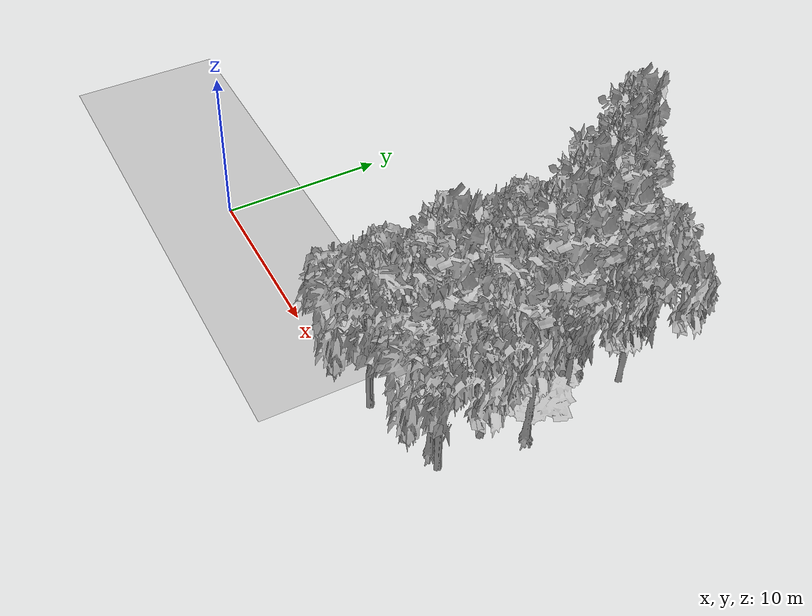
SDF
<sdf version="1.7">
 <world name="default">
  <model name="ground_plane">
   <static>1</static>
   <link name="link">
    <collision name="collision">
     <pose>-50 0 0 0 -0 0</pose>
     <geometry><plane><normal>0 0 1</normal><size>100 100</size></plane></geometry>
     <surface><contact><ode><min_depth>0.01</min_depth><max_vel>0</max_vel></ode></contact></surface>
    </collision>
    <visual name="grass">
     <cast_shadows>0</cast_shadows>
     <geometry>
      <mesh>
       <scale>0.5814285714285714 0.18142857142857144 0.1</scale>
       <uri>file://grass_plane/meshes/grass_plane.dae</uri>
      </mesh>
     </geometry>
    </visual>
   </link>
  </model>
  <model name="Tree 21">
   <static>1</static>
   <pose>21.367335471457935 2.1519935512606843 0 1.57079 -0 0</pose>
   <link name="link">
    <collision name="collision">
     <geometry><mesh><scale>3.5 5 3.5</scale><uri>model://tree_9/meshes/tree_9.obj</uri></mesh></geometry>
    </collision>
    <visual name="visual">
     <geometry><mesh><scale>3.5 5 3.5</scale><uri>model://tree_9/meshes/tree_9.obj</uri></mesh></geometry>
    </visual>
   </link>
  </model>
  <model name="Tree 24">
   <static>1</static>
   <pose>21.791082474754603 13.55375864014023 0 1.57079 -0 0</pose>
   <link name="link">
    <collision name="collision">
     <geometry><mesh><scale>3.5 5 3.5</scale><uri>model://tree_2/meshes/tree_2.obj</uri></mesh></geometry>
    </collision>
    <visual name="visual">
     <geometry><mesh><scale>3.5 5 3.5</scale><uri>model://tree_2/meshes/tree_2.obj</uri></mesh></geometry>
    </visual>
   </link>
  </model>
  <model name="Tree 45">
   <static>1</static>
   <pose>19.78673525410484 12.360488817873605 0 1.57079 -0 0</pose>
   <link name="link">
    <collision name="collision">
     <geometry><mesh><scale>3.5 5 3.5</scale><uri>model://tree_9/meshes/tree_9.obj</uri></mesh></geometry>
    </collision>
    <visual name="visual">
     <geometry><mesh><scale>3.5 5 3.5</scale><uri>model://tree_9/meshes/tree_9.obj</uri></mesh></geometry>
    </visual>
   </link>
  </model>
  <model name="Tree 61">
   <static>1</static>
   <pose>17.26923406906792 10.206086958640569 0 1.57079 -0 0</pose>
   <link name="link">
    <collision name="collision">
     <geometry><mesh><scale>4 2.5 4</scale><uri>model://tree_1/meshes/tree_1.obj</uri></mesh></geometry>
    </collision>
    <visual name="visual">
     <geometry><mesh><scale>4 2.5 4</scale><uri>model://tree_1/meshes/tree_1.obj</uri></mesh></geometry>
    </visual>
   </link>
  </model>
  <model name="Tree 104">
   <static>1</static>
   <pose>19.315531246114944 10.864921184924029 0 1.57079 -0 0</pose>
   <link name="link">
    <collision name="collision">
     <geometry><mesh><scale>3.5 5 3.5</scale><uri>model://tree_2/meshes/tree_2.obj</uri></mesh></geometry>
    </collision>
    <visual name="visual">
     <geometry><mesh><scale>3.5 5 3.5</scale><uri>model://tree_2/meshes/tree_2.obj</uri></mesh></geometry>
    </visual>
   </link>
  </model>
  <model name="Tree 107">
   <static>1</static>
   <pose>20.34890130940515 11.949042028274288 0 1.57079 -0 0</pose>
   <link name="link">
    <collision name="collision">
     <geometry><mesh><scale>3.5 5 3.5</scale><uri>model://tree_9/meshes/tree_9.obj</uri></mesh></geometry>
    </collision>
    <visual name="visual">
     <geometry><mesh><scale>3.5 5 3.5</scale><uri>model://tree_9/meshes/tree_9.obj</uri></mesh></geometry>
    </visual>
   </link>
  </model>
  <model name="Tree 151">
   <static>1</static>
   <pose>21.59081989070623 4.947065967523464 0 1.57079 -0 0</pose>
   <link name="link">
    <collision name="collision">
     <geometry><mesh><scale>3.5 5 3.5</scale><uri>model://tree_2/meshes/tree_2.obj</uri></mesh></geometry>
    </collision>
    <visual name="visual">
     <geometry><mesh><scale>3.5 5 3.5</scale><uri>model://tree_2/meshes/tree_2.obj</uri></mesh></geometry>
    </visual>
   </link>
  </model>
  <model name="Tree 154">
   <static>1</static>
   <pose>17.85595041410879 12.108452537775136 0 1.57079 -0 0</pose>
   <link name="link">
    <collision name="collision">
     <geometry><mesh><scale>3.5 5 3.5</scale><uri>model://tree_2/meshes/tree_2.obj</uri></mesh></geometry>
    </collision>
    <visual name="visual">
     <geometry><mesh><scale>3.5 5 3.5</scale><uri>model://tree_2/meshes/tree_2.obj</uri></mesh></geometry>
    </visual>
   </link>
  </model>
  <model name="Tree 183">
   <static>1</static>
   <pose>21.203133754636255 10.395922435087932 0 1.57079 -0 0</pose>
   <link name="link">
    <collision name="collision">
     <geometry><mesh><scale>3.5 5 3.5</scale><uri>model://tree_2/meshes/tree_2.obj</uri></mesh></geometry>
    </collision>
    <visual name="visual">
     <geometry><mesh><scale>3.5 5 3.5</scale><uri>model://tree_2/meshes/tree_2.obj</uri></mesh></geometry>
    </visual>
   </link>
  </model>
  <model name="Tree 184">
   <static>1</static>
   <pose>18.128221362961085 14.20443538642537 0 1.57079 -0 0</pose>
   <link name="link">
    <collision name="collision">
     <geometry><mesh><scale>3.5 5 3.5</scale><uri>model://tree_9/meshes/tree_9.obj</uri></mesh></geometry>
    </collision>
    <visual name="visual">
     <geometry><mesh><scale>3.5 5 3.5</scale><uri>model://tree_9/meshes/tree_9.obj</uri></mesh></geometry>
    </visual>
   </link>
  </model>
  <model name="Tree 186">
   <static>1</static>
   <pose>20.27285421675458 7.913068570621977 0 1.57079 -0 0</pose>
   <link name="link">
    <collision name="collision">
     <geometry><mesh><scale>4 2.5 4</scale><uri>model://tree_1/meshes/tree_1.obj</uri></mesh></geometry>
    </collision>
    <visual name="visual">
     <geometry><mesh><scale>4 2.5 4</scale><uri>model://tree_1/meshes/tree_1.obj</uri></mesh></geometry>
    </visual>
   </link>
  </model>
  <model name="Tree 235">
   <static>1</static>
   <pose>22.754170959356074 7.072260937601882 0 1.57079 -0 0</pose>
   <link name="link">
    <collision name="collision">
     <geometry><mesh><scale>3.5 5 3.5</scale><uri>model://tree_9/meshes/tree_9.obj</uri></mesh></geometry>
    </collision>
    <visual name="visual">
     <geometry><mesh><scale>3.5 5 3.5</scale><uri>model://tree_9/meshes/tree_9.obj</uri></mesh></geometry>
    </visual>
   </link>
  </model>
  <model name="Tree 272">
   <static>1</static>
   <pose>21.361020384196735 10.345353155049605 0 1.57079 -0 0</pose>
   <link name="link">
    <collision name="collision">
     <geometry><mesh><scale>3.5 5 3.5</scale><uri>model://tree_2/meshes/tree_2.obj</uri></mesh></geometry>
    </collision>
    <visual name="visual">
     <geometry><mesh><scale>3.5 5 3.5</scale><uri>model://tree_2/meshes/tree_2.obj</uri></mesh></geometry>
    </visual>
   </link>
  </model>
  <model name="Tree 273">
   <static>1</static>
   <pose>21.27227395288793 9.99260406678098 0 1.57079 -0 0</pose>
   <link name="link">
    <collision name="collision">
     <geometry><mesh><scale>3.5 5 3.5</scale><uri>model://tree_2/meshes/tree_2.obj</uri></mesh></geometry>
    </collision>
    <visual name="visual">
     <geometry><mesh><scale>3.5 5 3.5</scale><uri>model://tree_2/meshes/tree_2.obj</uri></mesh></geometry>
    </visual>
   </link>
  </model>
  <model name="Tree 378">
   <static>1</static>
   <pose>17.480769987250042 3.4021114461255983 0 1.57079 -0 0</pose>
   <link name="link">
    <collision name="collision">
     <geometry><mesh><scale>3 2 3</scale><uri>model://tree_3/meshes/tree_3.obj</uri></mesh></geometry>
    </collision>
    <visual name="visual">
     <geometry><mesh><scale>3 2 3</scale><uri>model://tree_3/meshes/tree_3.obj</uri></mesh></geometry>
    </visual>
   </link>
  </model>
  <model name="Tree 423">
   <static>1</static>
   <pose>18.093336139817765 5.844083357259766 0 1.57079 -0 0</pose>
   <link name="link">
    <collision name="collision">
     <geometry><mesh><scale>3.5 5 3.5</scale><uri>model://tree_2/meshes/tree_2.obj</uri></mesh></geometry>
    </collision>
    <visual name="visual">
     <geometry><mesh><scale>3.5 5 3.5</scale><uri>model://tree_2/meshes/tree_2.obj</uri></mesh></geometry>
    </visual>
   </link>
  </model>
  <model name="Tree 437">
   <static>1</static>
   <pose>19.46533851722195 9.715644487676379 0 1.57079 -0 0</pose>
   <link name="link">
    <collision name="collision">
     <geometry><mesh><scale>3 2 3</scale><uri>model://tree_3/meshes/tree_3.obj</uri></mesh></geometry>
    </collision>
    <visual name="visual">
     <geometry><mesh><scale>3 2 3</scale><uri>model://tree_3/meshes/tree_3.obj</uri></mesh></geometry>
    </visual>
   </link>
  </model>
  <model name="Tree 443">
   <static>1</static>
   <pose>17.309995790582775 0.7900076674562229 0 1.57079 -0 0</pose>
   <link name="link">
    <collision name="collision">
     <geometry><mesh><scale>3.5 5 3.5</scale><uri>model://tree_2/meshes/tree_2.obj</uri></mesh></geometry>
    </collision>
    <visual name="visual">
     <geometry><mesh><scale>3.5 5 3.5</scale><uri>model://tree_2/meshes/tree_2.obj</uri></mesh></geometry>
    </visual>
   </link>
  </model>
  <model name="Tree 450">
   <static>1</static>
   <pose>21.26184371597367 9.288771762307253 0 1.57079 -0 0</pose>
   <link name="link">
    <collision name="collision">
     <geometry><mesh><scale>3.5 5 3.5</scale><uri>model://tree_9/meshes/tree_9.obj</uri></mesh></geometry>
    </collision>
    <visual name="visual">
     <geometry><mesh><scale>3.5 5 3.5</scale><uri>model://tree_9/meshes/tree_9.obj</uri></mesh></geometry>
    </visual>
   </link>
  </model>
  <model name="Tree 462">
   <static>1</static>
   <pose>21.071469884730092 8.161537792653519 0 1.57079 -0 0</pose>
   <link name="link">
    <collision name="collision">
     <geometry><mesh><scale>3 2 3</scale><uri>model://tree_3/meshes/tree_3.obj</uri></mesh></geometry>
    </collision>
    <visual name="visual">
     <geometry><mesh><scale>3 2 3</scale><uri>model://tree_3/meshes/tree_3.obj</uri></mesh></geometry>
    </visual>
   </link>
  </model>
  <model name="Tree 490">
   <static>1</static>
   <pose>17.431753157852086 8.566599556127677 0 1.57079 -0 0</pose>
   <link name="link">
    <collision name="collision">
     <geometry><mesh><scale>3.5 5 3.5</scale><uri>model://tree_2/meshes/tree_2.obj</uri></mesh></geometry>
    </collision>
    <visual name="visual">
     <geometry><mesh><scale>3.5 5 3.5</scale><uri>model://tree_2/meshes/tree_2.obj</uri></mesh></geometry>
    </visual>
   </link>
  </model>
  <model name="Tree 532">
   <static>1</static>
   <pose>17.00543765375177 12.456114257547924 0 1.57079 -0 0</pose>
   <link name="link">
    <collision name="collision">
     <geometry><mesh><scale>3 2 3</scale><uri>model://tree_3/meshes/tree_3.obj</uri></mesh></geometry>
    </collision>
    <visual name="visual">
     <geometry><mesh><scale>3 2 3</scale><uri>model://tree_3/meshes/tree_3.obj</uri></mesh></geometry>
    </visual>
   </link>
  </model>
  <model name="Tree 534">
   <static>1</static>
   <pose>22.31300314288994 2.006670236255246 0 1.57079 -0 0</pose>
   <link name="link">
    <collision name="collision">
     <geometry><mesh><scale>3.5 5 3.5</scale><uri>model://tree_2/meshes/tree_2.obj</uri></mesh></geometry>
    </collision>
    <visual name="visual">
     <geometry><mesh><scale>3.5 5 3.5</scale><uri>model://tree_2/meshes/tree_2.obj</uri></mesh></geometry>
    </visual>
   </link>
  </model>
 </world>
</sdf>
